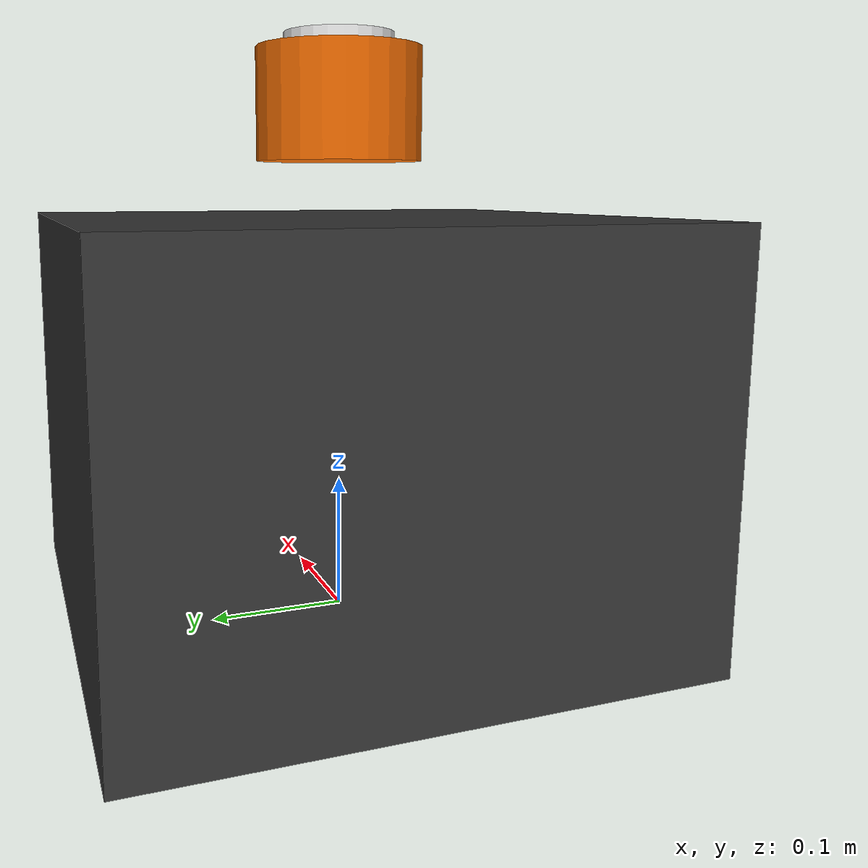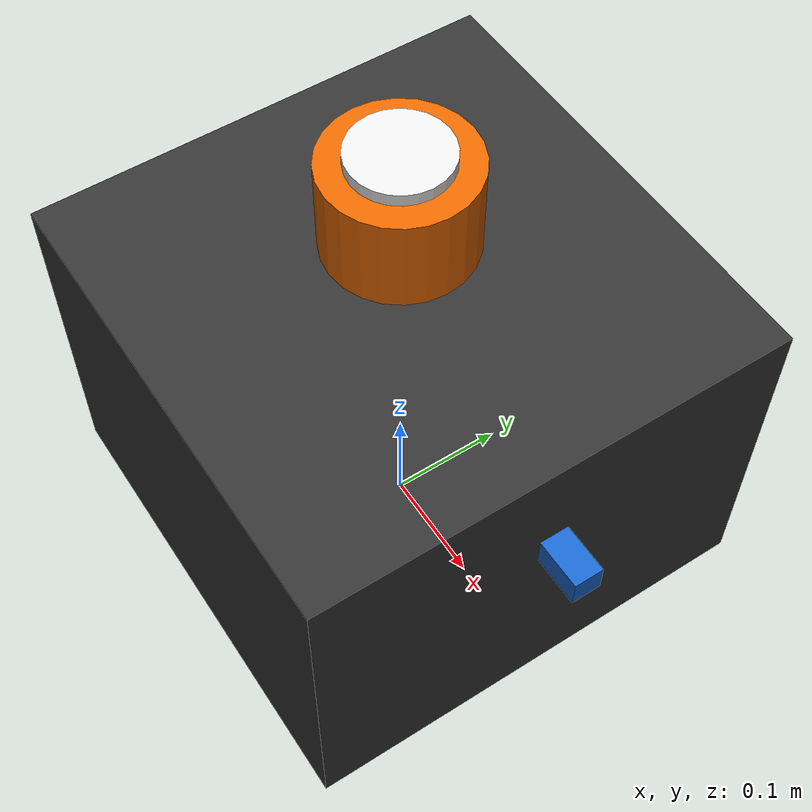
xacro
<?xml version="1.0"?>
<robot name="diy_challenge_robot" xmlns:xacro="http://www.ros.org/wiki/xacro">

  <!-- ═══════════════════════════════════════ MATERIALS ══ -->
  <material name="dark_grey">
    <color rgba="0.2 0.2 0.2 1.0"/>
  </material>
  <material name="blue">
    <color rgba="0.1 0.4 0.8 1.0"/>
  </material>
  <material name="green">
    <color rgba="0.1 0.8 0.2 1.0"/>
  </material>
  <material name="orange">
    <color rgba="0.9 0.4 0.0 1.0"/>
  </material>
  <material name="white">
    <color rgba="0.9 0.9 0.9 1.0"/>
  </material>

  <!-- ═══════════════════════════════════════ BASE LINK ══ -->
  <link name="base_link">
    <visual>
      <geometry>
        <box size="0.406 0.406 0.3"/>
      </geometry>
      <origin xyz="0 0 0.15" rpy="0 0 0"/>
      <material name="dark_grey"/>
    </visual>
    <collision>
      <geometry>
        <box size="0.610 0.406 0.406"/>
      </geometry>
      <origin xyz="0 0 0.203" rpy="0 0 0"/>
    </collision>
    <inertial>
      <mass value="8.0"/>
      <inertia ixx="0.1" ixy="0.0" ixz="0.0"
               iyy="0.1" iyz="0.0"
               izz="0.1"/>
    </inertial>
  </link>

  <link name="lidar_link">
    <visual>
      <geometry>
        <cylinder length="0.08" radius="0.06"/>
      </geometry>
      <material name="orange"/>
    </visual>
  </link>

  <joint name="base_to_lidar" type="fixed">
    <parent link="base_link"/>
    <child link="lidar_link"/>
    <!-- CALIB: Replace with lidar_imu_calib result for lidar→imu, then
                compute imu→base_link to get this transform. -->
    <origin xyz="0.0 0.0 0.38" rpy="0.0 0.0 0.0"/>
  </joint>

  <link name="imu_link">
    <visual>
      <geometry>
        <box size="0.03 0.03 0.015"/>
      </geometry>
      <material name="green"/>
    </visual>
  </link>

  <joint name="base_to_imu" type="fixed">
    <parent link="base_link"/>
    <child link="imu_link"/>
    <!-- CALIB: Replace with measured/calibrated IMU mount position. -->
    <origin xyz="0.0 0.0 0.25" rpy="0.0 0.0 0.0"/>
  </joint>

  <link name="camera_link">
    <visual>
      <geometry>
        <box size="0.09 0.025 0.025"/>
      </geometry>
      <material name="blue"/>
    </visual>
  </link>

  <joint name="base_to_camera" type="fixed">
    <parent link="base_link"/>
    <child link="camera_link"/>
    <!-- CALIB: Replace xyz with measured mount position.
                rpy: camera faces forward (+x of base_link), need
                RealSense→ROS optical convention if using stereo topics. -->
    <origin xyz="0.20 0.0 0.20" rpy="0.0 0.0 0.0"/>
  </joint>

  <!-- Camera optical frame (required by apriltag_ros and realsense2_ros) -->
  <link name="camera_optical_link"/>
  <joint name="camera_to_optical" type="fixed">
    <parent link="camera_link"/>
    <child link="camera_optical_link"/>
    <!-- ROS optical convention: x right, y down, z into scene -->
    <origin xyz="0 0 0" rpy="-1.5707963 0 -1.5707963"/>
  </joint>

  <link name="gps_link">
    <visual>
      <geometry>
        <cylinder length="0.02" radius="0.04"/>
      </geometry>
      <material name="white"/>
    </visual>
  </link>

  <joint name="base_to_gps" type="fixed">
    <parent link="base_link"/>
    <child link="gps_link"/>
    <!-- CALIB: Replace with physically measured antenna phase centre position. -->
    <origin xyz="0.0 0.0 0.42" rpy="0.0 0.0 0.0"/>
  </joint>

</robot>
